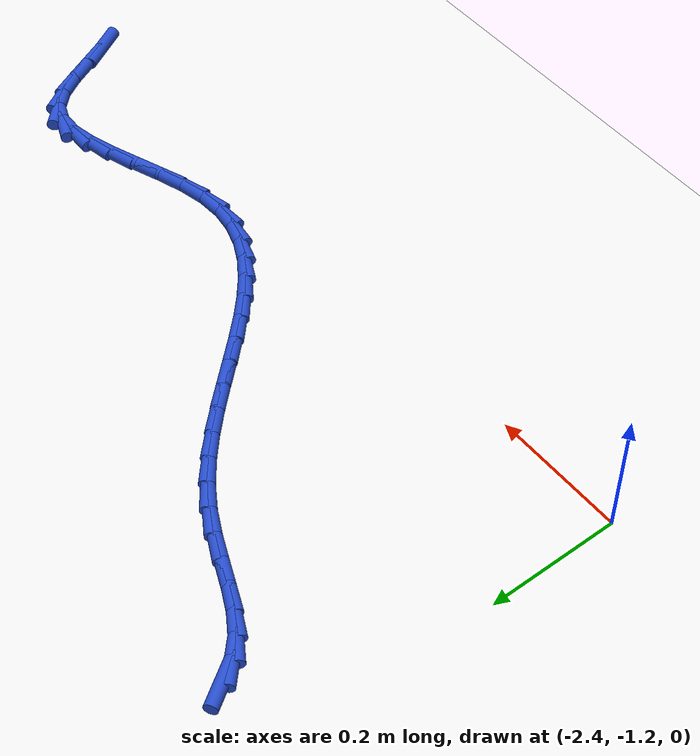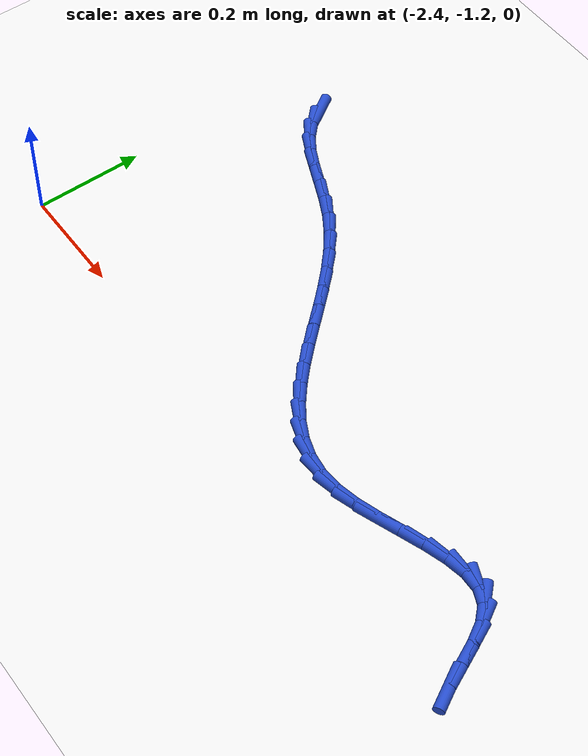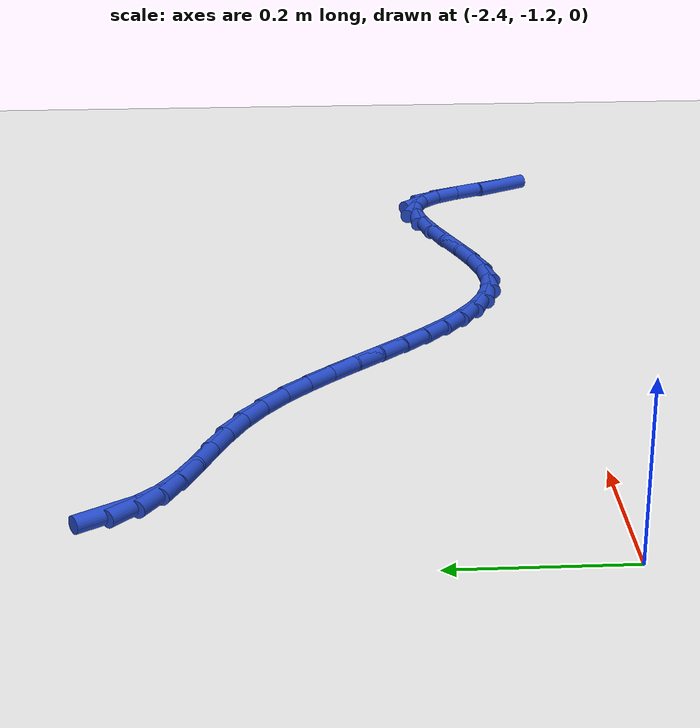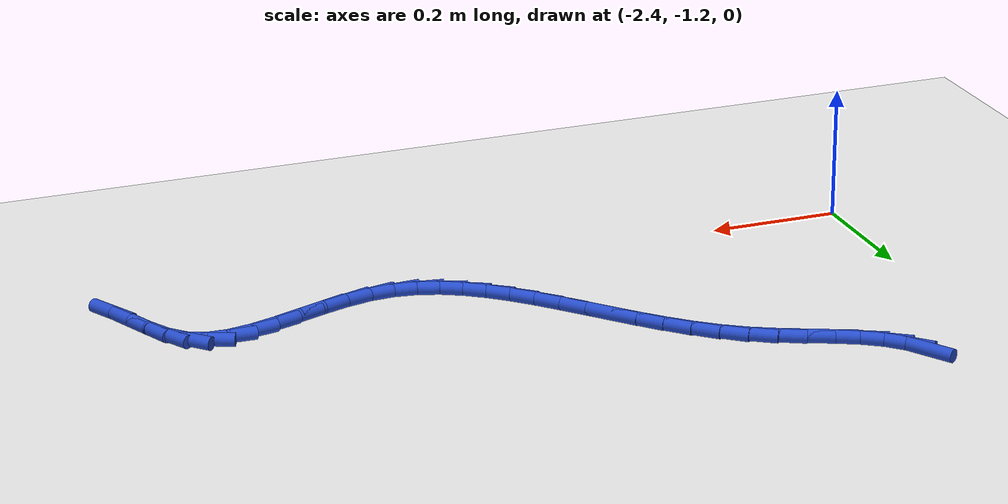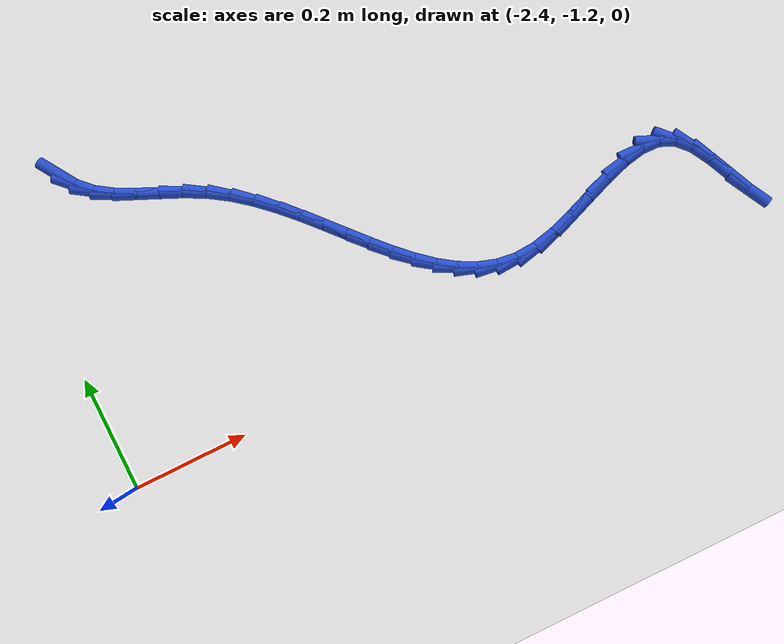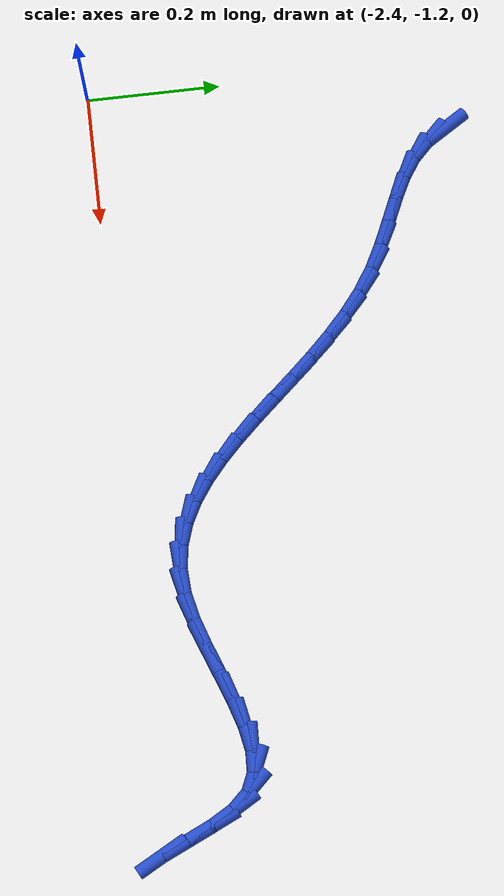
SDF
<sdf version="1.6">
 <world name="default">
  <model name="ground_plane">
   <static>1</static>
   <link name="link">
    <collision name="collision">
     <geometry><plane><normal>0 0 1</normal><size>100 100</size></plane></geometry>
     <surface><friction><ode><mu>100</mu><mu2>50</mu2></ode></friction></surface>
    </collision>
    <visual name="visual">
     <cast_shadows>0</cast_shadows>
     <geometry><plane><normal>0 0 1</normal><size>100 100</size></plane></geometry>
     <material>
      <script><uri>file://media/materials/scripts/gazebo.material</uri><name>Gazebo/WhiteGlow</name></script>
     </material>
    </visual>
   </link>
  </model>
  <model name="line">
   <link name="link_120">
    <pose>-2.287471928201535 -0.6730310359913952 0.01 0 1.57 -1.0006740111214893</pose>
    <collision name="collision">
     <geometry><cylinder><radius>0.01</radius><length>0.08</length></cylinder></geometry>
    </collision>
    <visual name="visual">
     <material>
      <script><name>Gazebo/Blue</name><uri>file://media/materials/scripts/gazebo.material</uri></script>
     </material>
     <geometry><cylinder><radius>0.01</radius><length>0.08</length></cylinder></geometry>
    </visual>
   </link>
   <link name="link_121">
    <pose>-2.2698570569747187 -0.7005052851316735 0.01 0 1.57 -0.7799318726458501</pose>
    <collision name="collision">
     <geometry><cylinder><radius>0.01</radius><length>0.08</length></cylinder></geometry>
    </collision>
    <visual name="visual">
     <material>
      <script><name>Gazebo/Blue</name><uri>file://media/materials/scripts/gazebo.material</uri></script>
     </material>
     <geometry><cylinder><radius>0.01</radius><length>0.08</length></cylinder></geometry>
    </visual>
   </link>
   <link name="link_122">
    <pose>-2.2465514787959475 -0.723557455852399 0.01 0 1.57 -0.5855678082242127</pose>
    <collision name="collision">
     <geometry><cylinder><radius>0.01</radius><length>0.08</length></cylinder></geometry>
    </collision>
    <visual name="visual">
     <material>
      <script><name>Gazebo/Blue</name><uri>file://media/materials/scripts/gazebo.material</uri></script>
     </material>
     <geometry><cylinder><radius>0.01</radius><length>0.08</length></cylinder></geometry>
    </visual>
   </link>
   <link name="link_123">
    <pose>-2.2179400852783346 -0.7425312568971236 0.01 0 1.57 -0.4674248211734074</pose>
    <collision name="collision">
     <geometry><cylinder><radius>0.01</radius><length>0.08</length></cylinder></geometry>
    </collision>
    <visual name="visual">
     <material>
      <script><name>Gazebo/Blue</name><uri>file://media/materials/scripts/gazebo.material</uri></script>
     </material>
     <geometry><cylinder><radius>0.01</radius><length>0.08</length></cylinder></geometry>
    </visual>
   </link>
   <link name="link_124">
    <pose>-2.1854255032914316 -0.7589423572008431 0.01 0 1.57 -0.41613344904535177</pose>
    <collision name="collision">
     <geometry><cylinder><radius>0.01</radius><length>0.08</length></cylinder></geometry>
    </collision>
    <visual name="visual">
     <material>
      <script><name>Gazebo/Blue</name><uri>file://media/materials/scripts/gazebo.material</uri></script>
     </material>
     <geometry><cylinder><radius>0.01</radius><length>0.08</length></cylinder></geometry>
    </visual>
   </link>
   <link name="link_125">
    <pose>-2.150479782971507 -0.7743863691852696 0.01 0 1.57 -0.42089211249842534</pose>
    <collision name="collision">
     <geometry><cylinder><radius>0.01</radius><length>0.08</length></cylinder></geometry>
    </collision>
    <visual name="visual">
     <material>
      <script><name>Gazebo/Blue</name><uri>file://media/materials/scripts/gazebo.material</uri></script>
     </material>
     <geometry><cylinder><radius>0.01</radius><length>0.08</length></cylinder></geometry>
    </visual>
   </link>
   <link name="link_126">
    <pose>-2.1145749744548326 -0.7904589052721147 0.01 0 1.57 -0.47713459665731467</pose>
    <collision name="collision">
     <geometry><cylinder><radius>0.01</radius><length>0.08</length></cylinder></geometry>
    </collision>
    <visual name="visual">
     <material>
      <script><name>Gazebo/Blue</name><uri>file://media/materials/scripts/gazebo.material</uri></script>
     </material>
     <geometry><cylinder><radius>0.01</radius><length>0.08</length></cylinder></geometry>
    </visual>
   </link>
   <link name="link_127">
    <pose>-2.079183127877678 -0.8087555778830915 0.01 0 1.57 -0.5765044252999589</pose>
    <collision name="collision">
     <geometry><cylinder><radius>0.01</radius><length>0.08</length></cylinder></geometry>
    </collision>
    <visual name="visual">
     <material>
      <script><name>Gazebo/Blue</name><uri>file://media/materials/scripts/gazebo.material</uri></script>
     </material>
     <geometry><cylinder><radius>0.01</radius><length>0.08</length></cylinder></geometry>
    </visual>
   </link>
   <link name="link_128">
    <pose>-2.045575615897036 -0.8306066380382526 0.01 0 1.57 -0.6711154781526565</pose>
    <collision name="collision">
     <geometry><cylinder><radius>0.01</radius><length>0.08</length></cylinder></geometry>
    </collision>
    <visual name="visual">
     <material>
      <script><name>Gazebo/Blue</name><uri>file://media/materials/scripts/gazebo.material</uri></script>
     </material>
     <geometry><cylinder><radius>0.01</radius><length>0.08</length></cylinder></geometry>
    </visual>
   </link>
   <link name="link_129">
    <pose>-2.013854190543468 -0.8557957149346281 0.01 0 1.57 -0.7439038030943076</pose>
    <collision name="collision">
     <geometry><cylinder><radius>0.01</radius><length>0.08</length></cylinder></geometry>
    </collision>
    <visual name="visual">
     <material>
      <script><name>Gazebo/Blue</name><uri>file://media/materials/scripts/gazebo.material</uri></script>
     </material>
     <geometry><cylinder><radius>0.01</radius><length>0.08</length></cylinder></geometry>
    </visual>
   </link>
   <link name="link_130">
    <pose>-1.983698021078384 -0.8835476448426917 0.01 0 1.57 -0.7961167741483908</pose>
    <collision name="collision">
     <geometry><cylinder><radius>0.01</radius><length>0.08</length></cylinder></geometry>
    </collision>
    <visual name="visual">
     <material>
      <script><name>Gazebo/Blue</name><uri>file://media/materials/scripts/gazebo.material</uri></script>
     </material>
     <geometry><cylinder><radius>0.01</radius><length>0.08</length></cylinder></geometry>
    </visual>
   </link>
   <link name="link_131">
    <pose>-1.954785701713342 -0.9130865036285332 0.01 0 1.57 -0.8291010995027228</pose>
    <collision name="collision">
     <geometry><cylinder><radius>0.01</radius><length>0.08</length></cylinder></geometry>
    </collision>
    <visual name="visual">
     <material>
      <script><name>Gazebo/Blue</name><uri>file://media/materials/scripts/gazebo.material</uri></script>
     </material>
     <geometry><cylinder><radius>0.01</radius><length>0.08</length></cylinder></geometry>
    </visual>
   </link>
   <link name="link_132">
    <pose>-1.926795826659897 -0.9436363671582416 0.01 0 1.57 -0.8437106434278747</pose>
    <collision name="collision">
     <geometry><cylinder><radius>0.01</radius><length>0.08</length></cylinder></geometry>
    </collision>
    <visual name="visual">
     <material>
      <script><name>Gazebo/Blue</name><uri>file://media/materials/scripts/gazebo.material</uri></script>
     </material>
     <geometry><cylinder><radius>0.01</radius><length>0.08</length></cylinder></geometry>
    </visual>
   </link>
   <link name="link_133">
    <pose>-1.899406990129607 -0.9744213112979052 0.01 0 1.57 -0.8400032196549048</pose>
    <collision name="collision">
     <geometry><cylinder><radius>0.01</radius><length>0.08</length></cylinder></geometry>
    </collision>
    <visual name="visual">
     <material>
      <script><name>Gazebo/Blue</name><uri>file://media/materials/scripts/gazebo.material</uri></script>
     </material>
     <geometry><cylinder><radius>0.01</radius><length>0.08</length></cylinder></geometry>
    </visual>
   </link>
   <link name="link_134">
    <pose>-1.8722977863340282 -1.0046654119136134 0.01 0 1.57 -0.8170639241067189</pose>
    <collision name="collision">
     <geometry><cylinder><radius>0.01</radius><length>0.08</length></cylinder></geometry>
    </collision>
    <visual name="visual">
     <material>
      <script><name>Gazebo/Blue</name><uri>file://media/materials/scripts/gazebo.material</uri></script>
     </material>
     <geometry><cylinder><radius>0.01</radius><length>0.08</length></cylinder></geometry>
    </visual>
   </link>
   <link name="link_135">
    <pose>-1.8451468094847165 -1.0335927448714555 0.01 0 1.57 -0.7728959708827524</pose>
    <collision name="collision">
     <geometry><cylinder><radius>0.01</radius><length>0.08</length></cylinder></geometry>
    </collision>
    <visual name="visual">
     <material>
      <script><name>Gazebo/Blue</name><uri>file://media/materials/scripts/gazebo.material</uri></script>
     </material>
     <geometry><cylinder><radius>0.01</radius><length>0.08</length></cylinder></geometry>
    </visual>
   </link>
   <link name="link_136">
    <pose>-1.8176326537932295 -1.0604273860375204 0.01 0 1.57 -0.7044342733903523</pose>
    <collision name="collision">
     <geometry><cylinder><radius>0.01</radius><length>0.08</length></cylinder></geometry>
    </collision>
    <visual name="visual">
     <material>
      <script><name>Gazebo/Blue</name><uri>file://media/materials/scripts/gazebo.material</uri></script>
     </material>
     <geometry><cylinder><radius>0.01</radius><length>0.08</length></cylinder></geometry>
    </visual>
   </link>
   <link name="link_137">
    <pose>-1.7894339134711228 -1.084393411277897 0.01 0 1.57 -0.607920837457406</pose>
    <collision name="collision">
     <geometry><cylinder><radius>0.01</radius><length>0.08</length></cylinder></geometry>
    </collision>
    <visual name="visual">
     <material>
      <script><name>Gazebo/Blue</name><uri>file://media/materials/scripts/gazebo.material</uri></script>
     </material>
     <geometry><cylinder><radius>0.01</radius><length>0.08</length></cylinder></geometry>
    </visual>
   </link>
   <link name="link_138">
    <pose>-1.7602291827299532 -1.1047148964586753 0.01 0 1.57 -0.48014595587183606</pose>
    <collision name="collision">
     <geometry><cylinder><radius>0.01</radius><length>0.08</length></cylinder></geometry>
    </collision>
    <visual name="visual">
     <material>
      <script><name>Gazebo/Blue</name><uri>file://media/materials/scripts/gazebo.material</uri></script>
     </material>
     <geometry><cylinder><radius>0.01</radius><length>0.08</length></cylinder></geometry>
    </visual>
   </link>
   <link name="link_139">
    <pose>-1.7296970557812774 -1.1206159174459425 0.01 0 1.57 -0.3211255420963539</pose>
    <collision name="collision">
     <geometry><cylinder><radius>0.01</radius><length>0.08</length></cylinder></geometry>
    </collision>
    <visual name="visual">
     <material>
      <script><name>Gazebo/Blue</name><uri>file://media/materials/scripts/gazebo.material</uri></script>
     </material>
     <geometry><cylinder><radius>0.01</radius><length>0.08</length></cylinder></geometry>
    </visual>
   </link>
   <link name="link_140">
    <pose>-1.6975161268366523 -1.1313205501057888 0.01 0 1.57 -0.13769307521277882</pose>
    <collision name="collision">
     <geometry><cylinder><radius>0.01</radius><length>0.08</length></cylinder></geometry>
    </collision>
    <visual name="visual">
     <material>
      <script><name>Gazebo/Blue</name><uri>file://media/materials/scripts/gazebo.material</uri></script>
     </material>
     <geometry><cylinder><radius>0.01</radius><length>0.08</length></cylinder></geometry>
    </visual>
   </link>
   <link name="link_141">
    <pose>-1.6633649901076344 -1.1360528703043038 0.01 0 1.57 0.05518352069631738</pose>
    <collision name="collision">
     <geometry><cylinder><radius>0.01</radius><length>0.08</length></cylinder></geometry>
    </collision>
    <visual name="visual">
     <material>
      <script><name>Gazebo/Blue</name><uri>file://media/materials/scripts/gazebo.material</uri></script>
     </material>
     <geometry><cylinder><radius>0.01</radius><length>0.08</length></cylinder></geometry>
    </visual>
   </link>
   <link name="link_142">
    <pose>-1.626923456541451 -1.1340398544081989 0.01 0 1.57 0.22041766025609394</pose>
    <collision name="collision">
     <geometry><cylinder><radius>0.01</radius><length>0.08</length></cylinder></geometry>
    </collision>
    <visual name="visual">
     <material>
      <script><name>Gazebo/Blue</name><uri>file://media/materials/scripts/gazebo.material</uri></script>
     </material>
     <geometry><cylinder><radius>0.01</radius><length>0.08</length></cylinder></geometry>
    </visual>
   </link>
   <link name="link_143">
    <pose>-1.5882331496585531 -1.1253709813139348 0.01 0 1.57 0.31788248660317586</pose>
    <collision name="collision">
     <geometry><cylinder><radius>0.01</radius><length>0.08</length></cylinder></geometry>
    </collision>
    <visual name="visual">
     <material>
      <script><name>Gazebo/Blue</name><uri>file://media/materials/scripts/gazebo.material</uri></script>
     </material>
     <geometry><cylinder><radius>0.01</radius><length>0.08</length></cylinder></geometry>
    </visual>
   </link>
   <link name="link_144">
    <pose>-1.5482011369626858 -1.1121988080976346 0.01 0 1.57 0.3607997132340049</pose>
    <collision name="collision">
     <geometry><cylinder><radius>0.01</radius><length>0.08</length></cylinder></geometry>
    </collision>
    <visual name="visual">
     <material>
      <script><name>Gazebo/Blue</name><uri>file://media/materials/scripts/gazebo.material</uri></script>
     </material>
     <geometry><cylinder><radius>0.01</radius><length>0.08</length></cylinder></geometry>
    </visual>
   </link>
   <link name="link_145">
    <pose>-1.5078611706529799 -1.0969778876153866 0.01 0 1.57 0.35788074022730326</pose>
    <collision name="collision">
     <geometry><cylinder><radius>0.01</radius><length>0.08</length></cylinder></geometry>
    </collision>
    <visual name="visual">
     <material>
      <script><name>Gazebo/Blue</name><uri>file://media/materials/scripts/gazebo.material</uri></script>
     </material>
     <geometry><cylinder><radius>0.01</radius><length>0.08</length></cylinder></geometry>
    </visual>
   </link>
   <link name="link_146">
    <pose>-1.4682470029285706 -1.082162772723281 0.01 0 1.57 0.30589489083876437</pose>
    <collision name="collision">
     <geometry><cylinder><radius>0.01</radius><length>0.08</length></cylinder></geometry>
    </collision>
    <visual name="visual">
     <material>
      <script><name>Gazebo/Blue</name><uri>file://media/materials/scripts/gazebo.material</uri></script>
     </material>
     <geometry><cylinder><radius>0.01</radius><length>0.08</length></cylinder></geometry>
    </visual>
   </link>
   <link name="link_147">
    <pose>-1.4303923859885879 -1.0702080162774055 0.01 0 1.57 0.18716164987347614</pose>
    <collision name="collision">
     <geometry><cylinder><radius>0.01</radius><length>0.08</length></cylinder></geometry>
    </collision>
    <visual name="visual">
     <material>
      <script><name>Gazebo/Blue</name><uri>file://media/materials/scripts/gazebo.material</uri></script>
     </material>
     <geometry><cylinder><radius>0.01</radius><length>0.08</length></cylinder></geometry>
    </visual>
   </link>
   <link name="link_148">
    <pose>-1.3953310720321648 -1.0635681711338492 0.01 0 1.57 -0.036150270197998574</pose>
    <collision name="collision">
     <geometry><cylinder><radius>0.01</radius><length>0.08</length></cylinder></geometry>
    </collision>
    <visual name="visual">
     <material>
      <script><name>Gazebo/Blue</name><uri>file://media/materials/scripts/gazebo.material</uri></script>
     </material>
     <geometry><cylinder><radius>0.01</radius><length>0.08</length></cylinder></geometry>
    </visual>
   </link>
   <link name="link_149">
    <pose>-1.364096813258434 -1.0646977901487011 0.01 0 1.57 -0.40633959575324474</pose>
    <collision name="collision">
     <geometry><cylinder><radius>0.01</radius><length>0.08</length></cylinder></geometry>
    </collision>
    <visual name="visual">
     <material>
      <script><name>Gazebo/Blue</name><uri>file://media/materials/scripts/gazebo.material</uri></script>
     </material>
     <geometry><cylinder><radius>0.01</radius><length>0.08</length></cylinder></geometry>
    </visual>
   </link>
   <link name="link_150">
    <pose>-1.3377210004880054 -1.0760469391213774 0.01 0 1.57 -0.8134760008733672</pose>
    <collision name="collision">
     <geometry><cylinder><radius>0.01</radius><length>0.08</length></cylinder></geometry>
    </collision>
    <visual name="visual">
     <material>
      <script><name>Gazebo/Blue</name><uri>file://media/materials/scripts/gazebo.material</uri></script>
     </material>
     <geometry><cylinder><radius>0.01</radius><length>0.08</length></cylinder></geometry>
    </visual>
   </link>
   <link name="link_151">
    <pose>-1.3164409651606865 -1.098556823916026 0.01 0 1.57 -1.0462348413655338</pose>
    <collision name="collision">
     <geometry><cylinder><radius>0.01</radius><length>0.08</length></cylinder></geometry>
    </collision>
    <visual name="visual">
     <material>
      <script><name>Gazebo/Blue</name><uri>file://media/materials/scripts/gazebo.material</uri></script>
     </material>
     <geometry><cylinder><radius>0.01</radius><length>0.08</length></cylinder></geometry>
    </visual>
   </link>
   <link name="link_152">
    <pose>-1.2985504099154057 -1.1294753955879238 0.01 0 1.57 -1.1412674031121322</pose>
    <collision name="collision">
     <geometry><cylinder><radius>0.01</radius><length>0.08</length></cylinder></geometry>
    </collision>
    <visual name="visual">
     <material>
      <script><name>Gazebo/Blue</name><uri>file://media/materials/scripts/gazebo.material</uri></script>
     </material>
     <geometry><cylinder><radius>0.01</radius><length>0.08</length></cylinder></geometry>
    </visual>
   </link>
   <link name="link_153">
    <pose>-1.2820511513371036 -1.1654959676133803 0.01 0 1.57 -1.1459870185817922</pose>
    <collision name="collision">
     <geometry><cylinder><radius>0.01</radius><length>0.08</length></cylinder></geometry>
    </collision>
    <visual name="visual">
     <material>
      <script><name>Gazebo/Blue</name><uri>file://media/materials/scripts/gazebo.material</uri></script>
     </material>
     <geometry><cylinder><radius>0.01</radius><length>0.08</length></cylinder></geometry>
    </visual>
   </link>
   <link name="link_154">
    <pose>-1.2649450060107195 -1.2033118534687044 0.01 0 1.57 -1.0733886980096932</pose>
    <collision name="collision">
     <geometry><cylinder><radius>0.01</radius><length>0.08</length></cylinder></geometry>
    </collision>
    <visual name="visual">
     <material>
      <script><name>Gazebo/Blue</name><uri>file://media/materials/scripts/gazebo.material</uri></script>
     </material>
     <geometry><cylinder><radius>0.01</radius><length>0.08</length></cylinder></geometry>
    </visual>
   </link>
  </model>
 </world>
</sdf>
